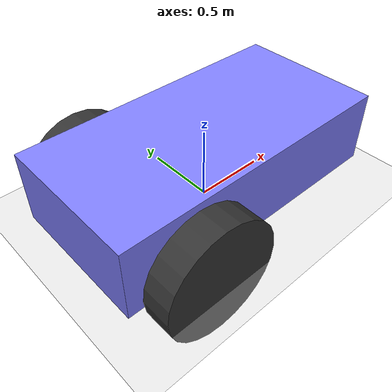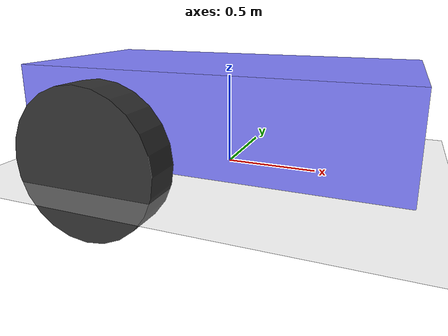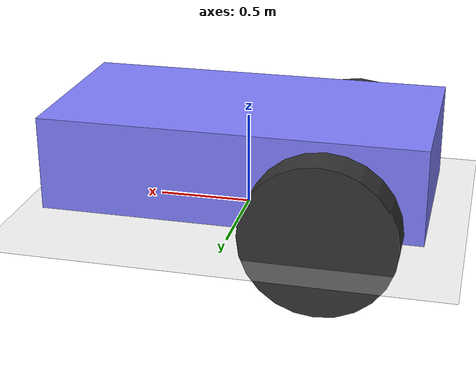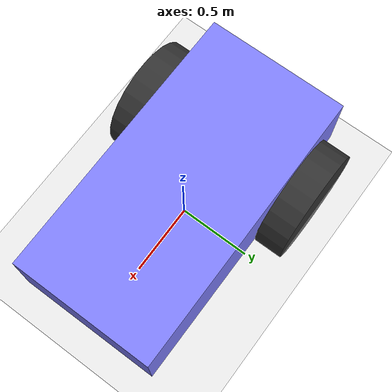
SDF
<?xml version="1.0" ?>
<sdf version="1.9">
  <world name="diff_drive_world">

    <physics name="1ms" type="ignored">
      <max_step_size>0.001</max_step_size>
      <real_time_factor>1.0</real_time_factor>
    </physics>

    <plugin filename="gz-sim-physics-system" name="gz::sim::systems::Physics">
    </plugin>
    <plugin filename="gz-sim-user-commands-system" name="gz::sim::systems::UserCommands">
    </plugin>
    <plugin filename="gz-sim-scene-broadcaster-system" name="gz::sim::systems::SceneBroadcaster">
    </plugin>

    <light type="directional" name="sun">
      <cast_shadows>true</cast_shadows>
      <pose>0 0 10 0 0 0</pose>
      <diffuse>0.8 0.8 0.8 1</diffuse>
      <specular>0.2 0.2 0.2 1</specular>
      <attenuation>
        <range>1000</range>
        <constant>0.9</constant>
        <linear>0.01</linear>
        <quadratic>0.001</quadratic>
      </attenuation>
      <direction>-0.5 0.1 -0.9</direction>
    </light>

    <model name="ground_plane">
      <static>true</static>
      <link name="link">
        <collision name="collision">
          <geometry>
            <plane>
              <normal>0 0 1</normal>
            </plane>
          </geometry>
        </collision>
        <visual name="visual">
          <geometry>
            <plane>
              <normal>0 0 1</normal>
              <size>100 100</size>
            </plane>
          </geometry>
          <material>
            <ambient>0.8 0.8 0.8 1</ambient>
            <diffuse>0.8 0.8 0.8 1</diffuse>
            <specular>0.8 0.8 0.8 1</specular>
          </material>
        </visual>
      </link>
    </model>

    <model name="diff_drive_robot">
      <pose>0 0 0.325 0 0 0</pose>

      <link name="chassis">
        <pose relative_to="__model__">0 0 0.0 0 0 0</pose>
        <inertial>
          <mass>1.14395</mass>
          <inertia>
            <ixx>0.126164</ixx>
            <ixy>0</ixy>
            <ixz>0</ixz>
            <iyy>0.416519</iyy>
            <iyz>0</iyz>
            <izz>0.481014</izz>
          </inertia>
        </inertial>
        <visual name="visual">
          <geometry>
            <box>
              <size>2.0 1.0 0.5</size>
            </box>
          </geometry>
          <material>
            <ambient>0.5 0.5 1.0 1</ambient>
            <diffuse>0.5 0.5 1.0 1</diffuse>
            <specular>0.0 0.0 1.0 1</specular>
          </material>
        </visual>
        <collision name="collision">
          <geometry>
            <box>
              <size>2.0 1.0 0.5</size>
            </box>
          </geometry>
        </collision>
      </link>

      <link name="left_wheel">
        <pose relative_to="chassis">-0.5 0.6 -0.2 -1.5707963267948966 0 0</pose>
        <inertial>
          <mass>2</mass>
          <inertia>
            <ixx>0.145833</ixx>
            <ixy>0</ixy>
            <ixz>0</ixz>
            <iyy>0.145833</iyy>
            <iyz>0</iyz>
            <izz>0.125</izz>
          </inertia>
        </inertial>
        <visual name="visual">
          <geometry>
            <cylinder>
              <radius>0.4</radius>
              <length>0.2</length>
            </cylinder>
          </geometry>
          <material>
            <ambient>0.2 0.2 0.2 1</ambient>
            <diffuse>0.2 0.2 0.2 1</diffuse>
            <specular>0.2 0.2 0.2 1</specular>
          </material>
        </visual>
        <collision name="collision">
          <geometry>
            <cylinder>
              <radius>0.4</radius>
              <length>0.2</length>
            </cylinder>
          </geometry>
          <surface>
            <friction>
              <ode>
                <mu>1.0</mu>
                <mu2>1.0</mu2>
              </ode>
            </friction>
          </surface>
        </collision>
      </link>

      <link name="right_wheel">
        <pose relative_to="chassis">-0.5 -0.6 -0.2 -1.5707963267948966 0 0</pose>
        <inertial>
          <mass>2</mass>
          <inertia>
            <ixx>0.145833</ixx>
            <ixy>0</ixy>
            <ixz>0</ixz>
            <iyy>0.145833</iyy>
            <iyz>0</iyz>
            <izz>0.125</izz>
          </inertia>
        </inertial>
        <visual name="visual">
          <geometry>
            <cylinder>
              <radius>0.4</radius>
              <length>0.2</length>
            </cylinder>
          </geometry>
          <material>
            <ambient>0.2 0.2 0.2 1</ambient>
            <diffuse>0.2 0.2 0.2 1</diffuse>
            <specular>0.2 0.2 0.2 1</specular>
          </material>
        </visual>
        <collision name="collision">
          <geometry>
            <cylinder>
              <radius>0.4</radius>
              <length>0.2</length>
            </cylinder>
          </geometry>
          <surface>
            <friction>
              <ode>
                <mu>1.0</mu>
                <mu2>1.0</mu2>
              </ode>
            </friction>
          </surface>
        </collision>
      </link>

      <link name="caster">
        <pose relative_to="chassis">0.8 0 -0.2 0 0 0</pose>
        <inertial>
          <mass>1</mass>
          <inertia>
            <ixx>0.1</ixx>
            <ixy>0</ixy>
            <ixz>0</ixz>
            <iyy>0.1</iyy>
            <iyz>0</iyz>
            <izz>0.1</izz>
          </inertia>
        </inertial>
        <visual name="visual">
          <geometry>
            <sphere>
              <radius>0.2</radius>
            </sphere>
          </geometry>
          <material>
            <ambient>0.2 0.2 0.2 1</ambient>
            <diffuse>0.2 0.2 0.2 1</diffuse>
            <specular>0.2 0.2 0.2 1</specular>
          </material>
        </visual>
        <collision name="collision">
          <geometry>
            <sphere>
              <radius>0.2</radius>
            </sphere>
          </geometry>
          <surface>
            <friction>
              <ode>
                <mu>0.0</mu>
                <mu2>0.0</mu2>
              </ode>
            </friction>
          </surface>
        </collision>
      </link>

      <joint name="left_wheel_joint" type="revolute">
        <pose relative_to="left_wheel"/>
        <parent>chassis</parent>
        <child>left_wheel</child>
        <axis>
          <xyz expressed_in="__model__">0 1 0</xyz>
          <limit>
            <lower>-1.79769e+308</lower>
            <upper>1.79769e+308</upper>
          </limit>
        </axis>
      </joint>

      <joint name="right_wheel_joint" type="revolute">
        <pose relative_to="right_wheel"/>
        <parent>chassis</parent>
        <child>right_wheel</child>
        <axis>
          <xyz expressed_in="__model__">0 1 0</xyz>
          <limit>
            <lower>-1.79769e+308</lower>
            <upper>1.79769e+308</upper>
          </limit>
        </axis>
      </joint>

      <joint name="caster_wheel" type="ball">
        <parent>chassis</parent>
        <child>caster</child>
      </joint>

      <plugin
        filename="gz-sim-diff-drive-system"
        name="gz::sim::systems::DiffDrive">
        <left_joint>left_wheel_joint</left_joint>
        <right_joint>right_wheel_joint</right_joint>
        <wheel_separation>1.2</wheel_separation>
        <wheel_radius>0.4</wheel_radius>
        <odom_publish_frequency>50</odom_publish_frequency>
        <topic>/cmd_vel</topic>
        <odom_topic>/odom</odom_topic>
        <frame_id>odom</frame_id>
        <child_frame_id>chassis</child_frame_id>
      </plugin>

    </model>

  </world>
</sdf>
